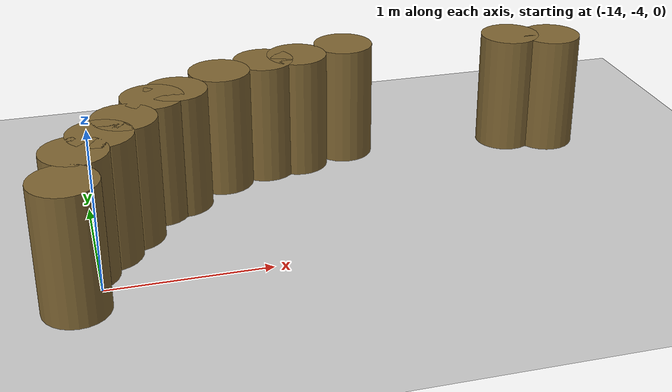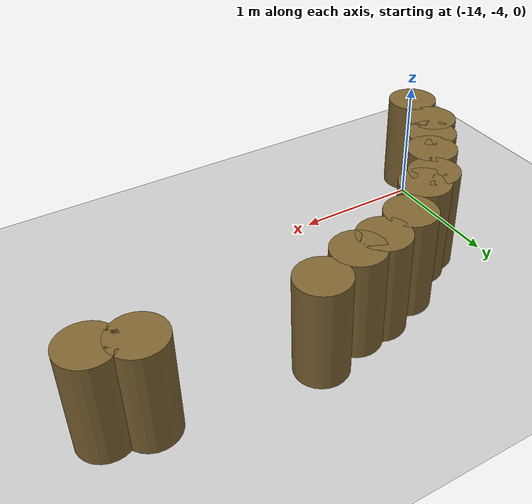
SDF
<sdf version="1.7">
 <world name="default">
  <model name="ground_plane">
   <static>1</static>
   <link name="link">
    <collision name="collision">
     <geometry><plane><normal>0 0 1</normal><size>100 100</size></plane></geometry>
     <surface><friction><ode><mu>100</mu><mu2>50</mu2></ode></friction></surface>
    </collision>
    <visual name="visual">
     <cast_shadows>0</cast_shadows>
     <geometry><plane><normal>0 0 1</normal><size>100 100</size></plane></geometry>
     <material>
      <script><uri>file://media/materials/scripts/gazebo.material</uri><name>Gazebo/Grey</name></script>
     </material>
    </visual>
   </link>
  </model>
  <model name="mini_cylinder_0_clone_0_clone_clone_clone_clone_3_clone">
   <link name="link">
    <inertial>
     <mass>1</mass>
     <inertia><ixx>0.145833</ixx><ixy>0</ixy><ixz>0</ixz><iyy>0.145833</iyy><iyz>0</iyz><izz>0.125</izz></inertia>
    </inertial>
    <visual name="visual">
     <geometry><cylinder><radius>0.2</radius><length>0.8</length></cylinder></geometry>
     <material>
      <script><name>Gazebo/Grey</name><uri>file://media/materials/scripts/gazebo.material</uri></script>
      <shader type="vertex"><normal_map>__default__</normal_map></shader>
      <ambient>0.5 0.4 0.2 1</ambient>
      <diffuse>0.7 0.7 0.7 1</diffuse>
      <specular>0.01 0.01 0.01 1</specular>
      <emissive>0 0 0 1</emissive>
     </material>
    </visual>
    <collision name="collision">
     <geometry><cylinder><radius>0.2</radius><length>0.8</length></cylinder></geometry>
     <surface>
      <friction>
       <ode><mu>1</mu><mu2>1</mu2><fdir1>0 0 0</fdir1><slip1>0</slip1><slip2>0</slip2></ode>
       <torsional>
        <coefficient>1</coefficient>
        <patch_radius>0</patch_radius>
        <surface_radius>0</surface_radius>
        <use_patch_radius>1</use_patch_radius>
        <ode><slip>0</slip></ode>
       </torsional>
      </friction>
      <bounce><restitution_coefficient>0</restitution_coefficient><threshold>1e+06</threshold></bounce>
      <contact>
       <collide_without_contact>0</collide_without_contact>
       <collide_without_contact_bitmask>1</collide_without_contact_bitmask>
       <collide_bitmask>1</collide_bitmask>
       <ode>
        <soft_cfm>0</soft_cfm>
        <soft_erp>0.2</soft_erp>
        <kp>1e+13</kp>
        <kd>1</kd>
        <max_vel>0.01</max_vel>
        <min_depth>0</min_depth>
       </ode>
       <bullet>
        <split_impulse>1</split_impulse>
        <split_impulse_penetration_threshold>-0.01</split_impulse_penetration_threshold>
        <soft_cfm>0</soft_cfm>
        <soft_erp>0.2</soft_erp>
        <kp>1e+13</kp>
        <kd>1</kd>
       </bullet>
      </contact>
     </surface>
    </collision>
   </link>
   <static>1</static>
   <pose>-14.0743 -3.80563 0.4 0 -0 0</pose>
  </model>
  <model name="mini_cylinder_0_clone_0_clone_clone_clone_clone_3_clone_0">
   <link name="link">
    <inertial>
     <mass>1</mass>
     <inertia><ixx>0.145833</ixx><ixy>0</ixy><ixz>0</ixz><iyy>0.145833</iyy><iyz>0</iyz><izz>0.125</izz></inertia>
    </inertial>
    <visual name="visual">
     <geometry><cylinder><radius>0.2</radius><length>0.8</length></cylinder></geometry>
     <material>
      <script><name>Gazebo/Grey</name><uri>file://media/materials/scripts/gazebo.material</uri></script>
      <shader type="vertex"><normal_map>__default__</normal_map></shader>
      <ambient>0.5 0.4 0.2 1</ambient>
      <diffuse>0.7 0.7 0.7 1</diffuse>
      <specular>0.01 0.01 0.01 1</specular>
      <emissive>0 0 0 1</emissive>
     </material>
    </visual>
    <collision name="collision">
     <geometry><cylinder><radius>0.2</radius><length>0.8</length></cylinder></geometry>
     <surface>
      <friction>
       <ode><mu>1</mu><mu2>1</mu2><fdir1>0 0 0</fdir1><slip1>0</slip1><slip2>0</slip2></ode>
       <torsional>
        <coefficient>1</coefficient>
        <patch_radius>0</patch_radius>
        <surface_radius>0</surface_radius>
        <use_patch_radius>1</use_patch_radius>
        <ode><slip>0</slip></ode>
       </torsional>
      </friction>
      <bounce><restitution_coefficient>0</restitution_coefficient><threshold>1e+06</threshold></bounce>
      <contact>
       <collide_without_contact>0</collide_without_contact>
       <collide_without_contact_bitmask>1</collide_without_contact_bitmask>
       <collide_bitmask>1</collide_bitmask>
       <ode>
        <soft_cfm>0</soft_cfm>
        <soft_erp>0.2</soft_erp>
        <kp>1e+13</kp>
        <kd>1</kd>
        <max_vel>0.01</max_vel>
        <min_depth>0</min_depth>
       </ode>
       <bullet>
        <split_impulse>1</split_impulse>
        <split_impulse_penetration_threshold>-0.01</split_impulse_penetration_threshold>
        <soft_cfm>0</soft_cfm>
        <soft_erp>0.2</soft_erp>
        <kp>1e+13</kp>
        <kd>1</kd>
       </bullet>
      </contact>
     </surface>
    </collision>
   </link>
   <static>1</static>
   <pose>-13.7598 -3.41261 0.4 0 -0 0</pose>
  </model>
  <model name="mini_cylinder_0_clone_0_clone_clone_clone_clone_3_clone_1">
   <link name="link">
    <inertial>
     <mass>1</mass>
     <inertia><ixx>0.145833</ixx><ixy>0</ixy><ixz>0</ixz><iyy>0.145833</iyy><iyz>0</iyz><izz>0.125</izz></inertia>
    </inertial>
    <visual name="visual">
     <geometry><cylinder><radius>0.2</radius><length>0.8</length></cylinder></geometry>
     <material>
      <script><name>Gazebo/Grey</name><uri>file://media/materials/scripts/gazebo.material</uri></script>
      <shader type="vertex"><normal_map>__default__</normal_map></shader>
      <ambient>0.5 0.4 0.2 1</ambient>
      <diffuse>0.7 0.7 0.7 1</diffuse>
      <specular>0.01 0.01 0.01 1</specular>
      <emissive>0 0 0 1</emissive>
     </material>
    </visual>
    <collision name="collision">
     <geometry><cylinder><radius>0.2</radius><length>0.8</length></cylinder></geometry>
     <surface>
      <friction>
       <ode><mu>1</mu><mu2>1</mu2><fdir1>0 0 0</fdir1><slip1>0</slip1><slip2>0</slip2></ode>
       <torsional>
        <coefficient>1</coefficient>
        <patch_radius>0</patch_radius>
        <surface_radius>0</surface_radius>
        <use_patch_radius>1</use_patch_radius>
        <ode><slip>0</slip></ode>
       </torsional>
      </friction>
      <bounce><restitution_coefficient>0</restitution_coefficient><threshold>1e+06</threshold></bounce>
      <contact>
       <collide_without_contact>0</collide_without_contact>
       <collide_without_contact_bitmask>1</collide_without_contact_bitmask>
       <collide_bitmask>1</collide_bitmask>
       <ode>
        <soft_cfm>0</soft_cfm>
        <soft_erp>0.2</soft_erp>
        <kp>1e+13</kp>
        <kd>1</kd>
        <max_vel>0.01</max_vel>
        <min_depth>0</min_depth>
       </ode>
       <bullet>
        <split_impulse>1</split_impulse>
        <split_impulse_penetration_threshold>-0.01</split_impulse_penetration_threshold>
        <soft_cfm>0</soft_cfm>
        <soft_erp>0.2</soft_erp>
        <kp>1e+13</kp>
        <kd>1</kd>
       </bullet>
      </contact>
     </surface>
    </collision>
   </link>
   <static>1</static>
   <pose>-13.4068 -3.05888 0.4 0 -0 0</pose>
  </model>
  <model name="mini_cylinder_0_clone_0_clone_clone_clone_clone_3_clone_2">
   <link name="link">
    <inertial>
     <mass>1</mass>
     <inertia><ixx>0.145833</ixx><ixy>0</ixy><ixz>0</ixz><iyy>0.145833</iyy><iyz>0</iyz><izz>0.125</izz></inertia>
    </inertial>
    <visual name="visual">
     <geometry><cylinder><radius>0.2</radius><length>0.8</length></cylinder></geometry>
     <material>
      <script><name>Gazebo/Grey</name><uri>file://media/materials/scripts/gazebo.material</uri></script>
      <shader type="vertex"><normal_map>__default__</normal_map></shader>
      <ambient>0.5 0.4 0.2 1</ambient>
      <diffuse>0.7 0.7 0.7 1</diffuse>
      <specular>0.01 0.01 0.01 1</specular>
      <emissive>0 0 0 1</emissive>
     </material>
    </visual>
    <collision name="collision">
     <geometry><cylinder><radius>0.2</radius><length>0.8</length></cylinder></geometry>
     <surface>
      <friction>
       <ode><mu>1</mu><mu2>1</mu2><fdir1>0 0 0</fdir1><slip1>0</slip1><slip2>0</slip2></ode>
       <torsional>
        <coefficient>1</coefficient>
        <patch_radius>0</patch_radius>
        <surface_radius>0</surface_radius>
        <use_patch_radius>1</use_patch_radius>
        <ode><slip>0</slip></ode>
       </torsional>
      </friction>
      <bounce><restitution_coefficient>0</restitution_coefficient><threshold>1e+06</threshold></bounce>
      <contact>
       <collide_without_contact>0</collide_without_contact>
       <collide_without_contact_bitmask>1</collide_without_contact_bitmask>
       <collide_bitmask>1</collide_bitmask>
       <ode>
        <soft_cfm>0</soft_cfm>
        <soft_erp>0.2</soft_erp>
        <kp>1e+13</kp>
        <kd>1</kd>
        <max_vel>0.01</max_vel>
        <min_depth>0</min_depth>
       </ode>
       <bullet>
        <split_impulse>1</split_impulse>
        <split_impulse_penetration_threshold>-0.01</split_impulse_penetration_threshold>
        <soft_cfm>0</soft_cfm>
        <soft_erp>0.2</soft_erp>
        <kp>1e+13</kp>
        <kd>1</kd>
       </bullet>
      </contact>
     </surface>
    </collision>
   </link>
   <static>1</static>
   <pose>-13.0931 -2.82342 0.4 0 -0 0</pose>
  </model>
  <model name="mini_cylinder_0_clone_0_clone_clone_clone_clone_3_clone_3">
   <link name="link">
    <inertial>
     <mass>1</mass>
     <inertia><ixx>0.145833</ixx><ixy>0</ixy><ixz>0</ixz><iyy>0.145833</iyy><iyz>0</iyz><izz>0.125</izz></inertia>
    </inertial>
    <visual name="visual">
     <geometry><cylinder><radius>0.2</radius><length>0.8</length></cylinder></geometry>
     <material>
      <script><name>Gazebo/Grey</name><uri>file://media/materials/scripts/gazebo.material</uri></script>
      <shader type="vertex"><normal_map>__default__</normal_map></shader>
      <ambient>0.5 0.4 0.2 1</ambient>
      <diffuse>0.7 0.7 0.7 1</diffuse>
      <specular>0.01 0.01 0.01 1</specular>
      <emissive>0 0 0 1</emissive>
     </material>
    </visual>
    <collision name="collision">
     <geometry><cylinder><radius>0.2</radius><length>0.8</length></cylinder></geometry>
     <surface>
      <friction>
       <ode><mu>1</mu><mu2>1</mu2><fdir1>0 0 0</fdir1><slip1>0</slip1><slip2>0</slip2></ode>
       <torsional>
        <coefficient>1</coefficient>
        <patch_radius>0</patch_radius>
        <surface_radius>0</surface_radius>
        <use_patch_radius>1</use_patch_radius>
        <ode><slip>0</slip></ode>
       </torsional>
      </friction>
      <bounce><restitution_coefficient>0</restitution_coefficient><threshold>1e+06</threshold></bounce>
      <contact>
       <collide_without_contact>0</collide_without_contact>
       <collide_without_contact_bitmask>1</collide_without_contact_bitmask>
       <collide_bitmask>1</collide_bitmask>
       <ode>
        <soft_cfm>0</soft_cfm>
        <soft_erp>0.2</soft_erp>
        <kp>1e+13</kp>
        <kd>1</kd>
        <max_vel>0.01</max_vel>
        <min_depth>0</min_depth>
       </ode>
       <bullet>
        <split_impulse>1</split_impulse>
        <split_impulse_penetration_threshold>-0.01</split_impulse_penetration_threshold>
        <soft_cfm>0</soft_cfm>
        <soft_erp>0.2</soft_erp>
        <kp>1e+13</kp>
        <kd>1</kd>
       </bullet>
      </contact>
     </surface>
    </collision>
   </link>
   <static>1</static>
   <pose>-12.5422 -2.66693 0.4 0 -0 0</pose>
  </model>
  <model name="mini_cylinder_0_clone_0_clone_clone_clone_clone_3_clone_4">
   <link name="link">
    <inertial>
     <mass>1</mass>
     <inertia><ixx>0.145833</ixx><ixy>0</ixy><ixz>0</ixz><iyy>0.145833</iyy><iyz>0</iyz><izz>0.125</izz></inertia>
    </inertial>
    <visual name="visual">
     <geometry><cylinder><radius>0.2</radius><length>0.8</length></cylinder></geometry>
     <material>
      <script><name>Gazebo/Grey</name><uri>file://media/materials/scripts/gazebo.material</uri></script>
      <shader type="vertex"><normal_map>__default__</normal_map></shader>
      <ambient>0.5 0.4 0.2 1</ambient>
      <diffuse>0.7 0.7 0.7 1</diffuse>
      <specular>0.01 0.01 0.01 1</specular>
      <emissive>0 0 0 1</emissive>
     </material>
    </visual>
    <collision name="collision">
     <geometry><cylinder><radius>0.2</radius><length>0.8</length></cylinder></geometry>
     <surface>
      <friction>
       <ode><mu>1</mu><mu2>1</mu2><fdir1>0 0 0</fdir1><slip1>0</slip1><slip2>0</slip2></ode>
       <torsional>
        <coefficient>1</coefficient>
        <patch_radius>0</patch_radius>
        <surface_radius>0</surface_radius>
        <use_patch_radius>1</use_patch_radius>
        <ode><slip>0</slip></ode>
       </torsional>
      </friction>
      <bounce><restitution_coefficient>0</restitution_coefficient><threshold>1e+06</threshold></bounce>
      <contact>
       <collide_without_contact>0</collide_without_contact>
       <collide_without_contact_bitmask>1</collide_without_contact_bitmask>
       <collide_bitmask>1</collide_bitmask>
       <ode>
        <soft_cfm>0</soft_cfm>
        <soft_erp>0.2</soft_erp>
        <kp>1e+13</kp>
        <kd>1</kd>
        <max_vel>0.01</max_vel>
        <min_depth>0</min_depth>
       </ode>
       <bullet>
        <split_impulse>1</split_impulse>
        <split_impulse_penetration_threshold>-0.01</split_impulse_penetration_threshold>
        <soft_cfm>0</soft_cfm>
        <soft_erp>0.2</soft_erp>
        <kp>1e+13</kp>
        <kd>1</kd>
       </bullet>
      </contact>
     </surface>
    </collision>
   </link>
   <static>1</static>
   <pose>-12.7787 -2.70587 0.4 0 -0 0</pose>
  </model>
  <model name="mini_cylinder_0_clone_0_clone_clone_clone_clone_3_clone_5">
   <link name="link">
    <inertial>
     <mass>1</mass>
     <inertia><ixx>0.145833</ixx><ixy>0</ixy><ixz>0</ixz><iyy>0.145833</iyy><iyz>0</iyz><izz>0.125</izz></inertia>
    </inertial>
    <visual name="visual">
     <geometry><cylinder><radius>0.2</radius><length>0.8</length></cylinder></geometry>
     <material>
      <script><name>Gazebo/Grey</name><uri>file://media/materials/scripts/gazebo.material</uri></script>
      <shader type="vertex"><normal_map>__default__</normal_map></shader>
      <ambient>0.5 0.4 0.2 1</ambient>
      <diffuse>0.7 0.7 0.7 1</diffuse>
      <specular>0.01 0.01 0.01 1</specular>
      <emissive>0 0 0 1</emissive>
     </material>
    </visual>
    <collision name="collision">
     <geometry><cylinder><radius>0.2</radius><length>0.8</length></cylinder></geometry>
     <surface>
      <friction>
       <ode><mu>1</mu><mu2>1</mu2><fdir1>0 0 0</fdir1><slip1>0</slip1><slip2>0</slip2></ode>
       <torsional>
        <coefficient>1</coefficient>
        <patch_radius>0</patch_radius>
        <surface_radius>0</surface_radius>
        <use_patch_radius>1</use_patch_radius>
        <ode><slip>0</slip></ode>
       </torsional>
      </friction>
      <bounce><restitution_coefficient>0</restitution_coefficient><threshold>1e+06</threshold></bounce>
      <contact>
       <collide_without_contact>0</collide_without_contact>
       <collide_without_contact_bitmask>1</collide_without_contact_bitmask>
       <collide_bitmask>1</collide_bitmask>
       <ode>
        <soft_cfm>0</soft_cfm>
        <soft_erp>0.2</soft_erp>
        <kp>1e+13</kp>
        <kd>1</kd>
        <max_vel>0.01</max_vel>
        <min_depth>0</min_depth>
       </ode>
       <bullet>
        <split_impulse>1</split_impulse>
        <split_impulse_penetration_threshold>-0.01</split_impulse_penetration_threshold>
        <soft_cfm>0</soft_cfm>
        <soft_erp>0.2</soft_erp>
        <kp>1e+13</kp>
        <kd>1</kd>
       </bullet>
      </contact>
     </surface>
    </collision>
   </link>
   <static>1</static>
   <pose>-12.1892 -2.54938 0.4 0 -0 0</pose>
  </model>
  <model name="mini_cylinder_0_clone_0_clone_clone_clone_clone_3_clone_9">
   <link name="link">
    <inertial>
     <mass>1</mass>
     <inertia><ixx>0.145833</ixx><ixy>0</ixy><ixz>0</ixz><iyy>0.145833</iyy><iyz>0</iyz><izz>0.125</izz></inertia>
    </inertial>
    <visual name="visual">
     <geometry><cylinder><radius>0.2</radius><length>0.8</length></cylinder></geometry>
     <material>
      <script><name>Gazebo/Grey</name><uri>file://media/materials/scripts/gazebo.material</uri></script>
      <shader type="vertex"><normal_map>__default__</normal_map></shader>
      <ambient>0.5 0.4 0.2 1</ambient>
      <diffuse>0.7 0.7 0.7 1</diffuse>
      <specular>0.01 0.01 0.01 1</specular>
      <emissive>0 0 0 1</emissive>
     </material>
    </visual>
    <collision name="collision">
     <geometry><cylinder><radius>0.2</radius><length>0.8</length></cylinder></geometry>
     <surface>
      <friction>
       <ode><mu>1</mu><mu2>1</mu2><fdir1>0 0 0</fdir1><slip1>0</slip1><slip2>0</slip2></ode>
       <torsional>
        <coefficient>1</coefficient>
        <patch_radius>0</patch_radius>
        <surface_radius>0</surface_radius>
        <use_patch_radius>1</use_patch_radius>
        <ode><slip>0</slip></ode>
       </torsional>
      </friction>
      <bounce><restitution_coefficient>0</restitution_coefficient><threshold>1e+06</threshold></bounce>
      <contact>
       <collide_without_contact>0</collide_without_contact>
       <collide_without_contact_bitmask>1</collide_without_contact_bitmask>
       <collide_bitmask>1</collide_bitmask>
       <ode>
        <soft_cfm>0</soft_cfm>
        <soft_erp>0.2</soft_erp>
        <kp>1e+13</kp>
        <kd>1</kd>
        <max_vel>0.01</max_vel>
        <min_depth>0</min_depth>
       </ode>
       <bullet>
        <split_impulse>1</split_impulse>
        <split_impulse_penetration_threshold>-0.01</split_impulse_penetration_threshold>
        <soft_cfm>0</soft_cfm>
        <soft_erp>0.2</soft_erp>
        <kp>1e+13</kp>
        <kd>1</kd>
       </bullet>
      </contact>
     </surface>
    </collision>
   </link>
   <static>1</static>
   <pose>-11.0108 -2.66693 0.4 0 -0 0</pose>
  </model>
  <model name="mini_cylinder_0_clone_0_clone_clone_clone_clone_3_clone_10">
   <link name="link">
    <inertial>
     <mass>1</mass>
     <inertia><ixx>0.145833</ixx><ixy>0</ixy><ixz>0</ixz><iyy>0.145833</iyy><iyz>0</iyz><izz>0.125</izz></inertia>
    </inertial>
    <visual name="visual">
     <geometry><cylinder><radius>0.2</radius><length>0.8</length></cylinder></geometry>
     <material>
      <script><name>Gazebo/Grey</name><uri>file://media/materials/scripts/gazebo.material</uri></script>
      <shader type="vertex"><normal_map>__default__</normal_map></shader>
      <ambient>0.5 0.4 0.2 1</ambient>
      <diffuse>0.7 0.7 0.7 1</diffuse>
      <specular>0.01 0.01 0.01 1</specular>
      <emissive>0 0 0 1</emissive>
     </material>
    </visual>
    <collision name="collision">
     <geometry><cylinder><radius>0.2</radius><length>0.8</length></cylinder></geometry>
     <surface>
      <friction>
       <ode><mu>1</mu><mu2>1</mu2><fdir1>0 0 0</fdir1><slip1>0</slip1><slip2>0</slip2></ode>
       <torsional>
        <coefficient>1</coefficient>
        <patch_radius>0</patch_radius>
        <surface_radius>0</surface_radius>
        <use_patch_radius>1</use_patch_radius>
        <ode><slip>0</slip></ode>
       </torsional>
      </friction>
      <bounce><restitution_coefficient>0</restitution_coefficient><threshold>1e+06</threshold></bounce>
      <contact>
       <collide_without_contact>0</collide_without_contact>
       <collide_without_contact_bitmask>1</collide_without_contact_bitmask>
       <collide_bitmask>1</collide_bitmask>
       <ode>
        <soft_cfm>0</soft_cfm>
        <soft_erp>0.2</soft_erp>
        <kp>1e+13</kp>
        <kd>1</kd>
        <max_vel>0.01</max_vel>
        <min_depth>0</min_depth>
       </ode>
       <bullet>
        <split_impulse>1</split_impulse>
        <split_impulse_penetration_threshold>-0.01</split_impulse_penetration_threshold>
        <soft_cfm>0</soft_cfm>
        <soft_erp>0.2</soft_erp>
        <kp>1e+13</kp>
        <kd>1</kd>
       </bullet>
      </contact>
     </surface>
    </collision>
   </link>
   <static>1</static>
   <pose>-10.7357 -2.74518 0.4 0 -0 0</pose>
  </model>
  <model name="mini_cylinder_0_clone_0_clone_clone_clone_clone_3_clone_19">
   <link name="link">
    <inertial>
     <mass>1</mass>
     <inertia><ixx>0.145833</ixx><ixy>0</ixy><ixz>0</ixz><iyy>0.145833</iyy><iyz>0</iyz><izz>0.125</izz></inertia>
    </inertial>
    <visual name="visual">
     <geometry><cylinder><radius>0.2</radius><length>0.8</length></cylinder></geometry>
     <material>
      <script><name>Gazebo/Grey</name><uri>file://media/materials/scripts/gazebo.material</uri></script>
      <shader type="vertex"><normal_map>__default__</normal_map></shader>
      <ambient>0.5 0.4 0.2 1</ambient>
      <diffuse>0.7 0.7 0.7 1</diffuse>
      <specular>0.01 0.01 0.01 1</specular>
      <emissive>0 0 0 1</emissive>
     </material>
    </visual>
    <collision name="collision">
     <geometry><cylinder><radius>0.2</radius><length>0.8</length></cylinder></geometry>
     <surface>
      <friction>
       <ode><mu>1</mu><mu2>1</mu2><fdir1>0 0 0</fdir1><slip1>0</slip1><slip2>0</slip2></ode>
       <torsional>
        <coefficient>1</coefficient>
        <patch_radius>0</patch_radius>
        <surface_radius>0</surface_radius>
        <use_patch_radius>1</use_patch_radius>
        <ode><slip>0</slip></ode>
       </torsional>
      </friction>
      <bounce><restitution_coefficient>0</restitution_coefficient><threshold>1e+06</threshold></bounce>
      <contact>
       <collide_without_contact>0</collide_without_contact>
       <collide_without_contact_bitmask>1</collide_without_contact_bitmask>
       <collide_bitmask>1</collide_bitmask>
       <ode>
        <soft_cfm>0</soft_cfm>
        <soft_erp>0.2</soft_erp>
        <kp>1e+13</kp>
        <kd>1</kd>
        <max_vel>0.01</max_vel>
        <min_depth>0</min_depth>
       </ode>
       <bullet>
        <split_impulse>1</split_impulse>
        <split_impulse_penetration_threshold>-0.01</split_impulse_penetration_threshold>
        <soft_cfm>0</soft_cfm>
        <soft_erp>0.2</soft_erp>
        <kp>1e+13</kp>
        <kd>1</kd>
       </bullet>
      </contact>
     </surface>
    </collision>
   </link>
   <static>1</static>
   <pose>-14.1529 -4.159 0.4 0 -0 0</pose>
  </model>
  <model name="mini_cylinder_0_clone_0_clone_clone_clone_clone_3_clone_21">
   <link name="link">
    <inertial>
     <mass>1</mass>
     <inertia><ixx>0.145833</ixx><ixy>0</ixy><ixz>0</ixz><iyy>0.145833</iyy><iyz>0</iyz><izz>0.125</izz></inertia>
    </inertial>
    <visual name="visual">
     <geometry><cylinder><radius>0.2</radius><length>0.8</length></cylinder></geometry>
     <material>
      <script><name>Gazebo/Grey</name><uri>file://media/materials/scripts/gazebo.material</uri></script>
      <shader type="vertex"><normal_map>__default__</normal_map></shader>
      <ambient>0.5 0.4 0.2 1</ambient>
      <diffuse>0.7 0.7 0.7 1</diffuse>
      <specular>0.01 0.01 0.01 1</specular>
      <emissive>0 0 0 1</emissive>
     </material>
    </visual>
    <collision name="collision">
     <geometry><cylinder><radius>0.2</radius><length>0.8</length></cylinder></geometry>
     <surface>
      <friction>
       <ode><mu>1</mu><mu2>1</mu2><fdir1>0 0 0</fdir1><slip1>0</slip1><slip2>0</slip2></ode>
       <torsional>
        <coefficient>1</coefficient>
        <patch_radius>0</patch_radius>
        <surface_radius>0</surface_radius>
        <use_patch_radius>1</use_patch_radius>
        <ode><slip>0</slip></ode>
       </torsional>
      </friction>
      <bounce><restitution_coefficient>0</restitution_coefficient><threshold>1e+06</threshold></bounce>
      <contact>
       <collide_without_contact>0</collide_without_contact>
       <collide_without_contact_bitmask>1</collide_without_contact_bitmask>
       <collide_bitmask>1</collide_bitmask>
       <ode>
        <soft_cfm>0</soft_cfm>
        <soft_erp>0.2</soft_erp>
        <kp>1e+13</kp>
        <kd>1</kd>
        <max_vel>0.01</max_vel>
        <min_depth>0</min_depth>
       </ode>
       <bullet>
        <split_impulse>1</split_impulse>
        <split_impulse_penetration_threshold>-0.01</split_impulse_penetration_threshold>
        <soft_cfm>0</soft_cfm>
        <soft_erp>0.2</soft_erp>
        <kp>1e+13</kp>
        <kd>1</kd>
       </bullet>
      </contact>
     </surface>
    </collision>
   </link>
   <static>1</static>
   <pose>-13.9171 -3.60876 0.4 0 -0 0</pose>
  </model>
  <model name="mini_cylinder_0_clone_0_clone_clone_clone_clone_3_clone_22">
   <link name="link">
    <inertial>
     <mass>1</mass>
     <inertia><ixx>0.145833</ixx><ixy>0</ixy><ixz>0</ixz><iyy>0.145833</iyy><iyz>0</iyz><izz>0.125</izz></inertia>
    </inertial>
    <visual name="visual">
     <geometry><cylinder><radius>0.2</radius><length>0.8</length></cylinder></geometry>
     <material>
      <script><name>Gazebo/Grey</name><uri>file://media/materials/scripts/gazebo.material</uri></script>
      <shader type="vertex"><normal_map>__default__</normal_map></shader>
      <ambient>0.5 0.4 0.2 1</ambient>
      <diffuse>0.7 0.7 0.7 1</diffuse>
      <specular>0.01 0.01 0.01 1</specular>
      <emissive>0 0 0 1</emissive>
     </material>
    </visual>
    <collision name="collision">
     <geometry><cylinder><radius>0.2</radius><length>0.8</length></cylinder></geometry>
     <surface>
      <friction>
       <ode><mu>1</mu><mu2>1</mu2><fdir1>0 0 0</fdir1><slip1>0</slip1><slip2>0</slip2></ode>
       <torsional>
        <coefficient>1</coefficient>
        <patch_radius>0</patch_radius>
        <surface_radius>0</surface_radius>
        <use_patch_radius>1</use_patch_radius>
        <ode><slip>0</slip></ode>
       </torsional>
      </friction>
      <bounce><restitution_coefficient>0</restitution_coefficient><threshold>1e+06</threshold></bounce>
      <contact>
       <collide_without_contact>0</collide_without_contact>
       <collide_without_contact_bitmask>1</collide_without_contact_bitmask>
       <collide_bitmask>1</collide_bitmask>
       <ode>
        <soft_cfm>0</soft_cfm>
        <soft_erp>0.2</soft_erp>
        <kp>1e+13</kp>
        <kd>1</kd>
        <max_vel>0.01</max_vel>
        <min_depth>0</min_depth>
       </ode>
       <bullet>
        <split_impulse>1</split_impulse>
        <split_impulse_penetration_threshold>-0.01</split_impulse_penetration_threshold>
        <soft_cfm>0</soft_cfm>
        <soft_erp>0.2</soft_erp>
        <kp>1e+13</kp>
        <kd>1</kd>
       </bullet>
      </contact>
     </surface>
    </collision>
   </link>
   <static>1</static>
   <pose>-13.564 -3.14385 0.4 0 -0 0</pose>
  </model>
 </world>
</sdf>
